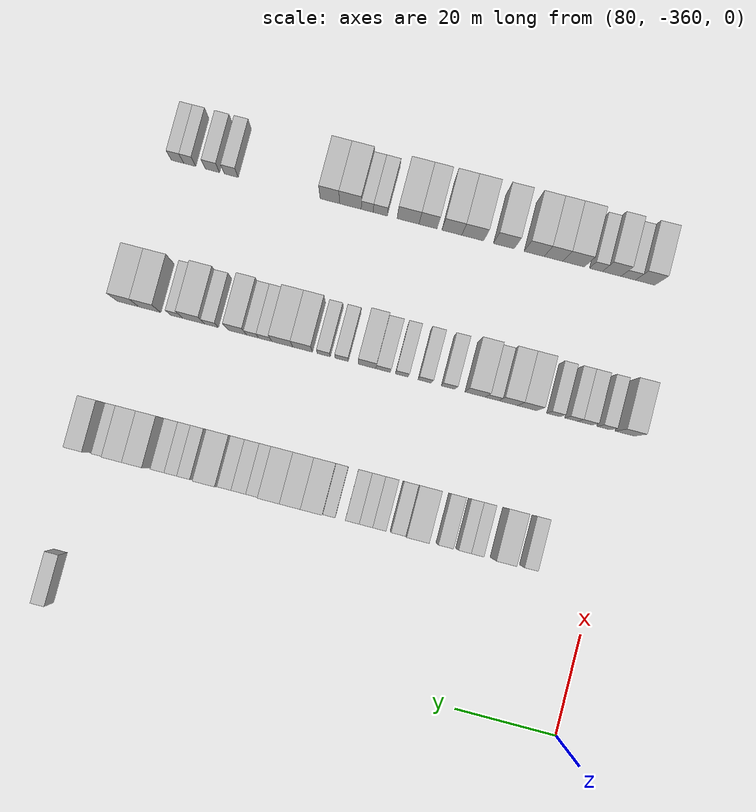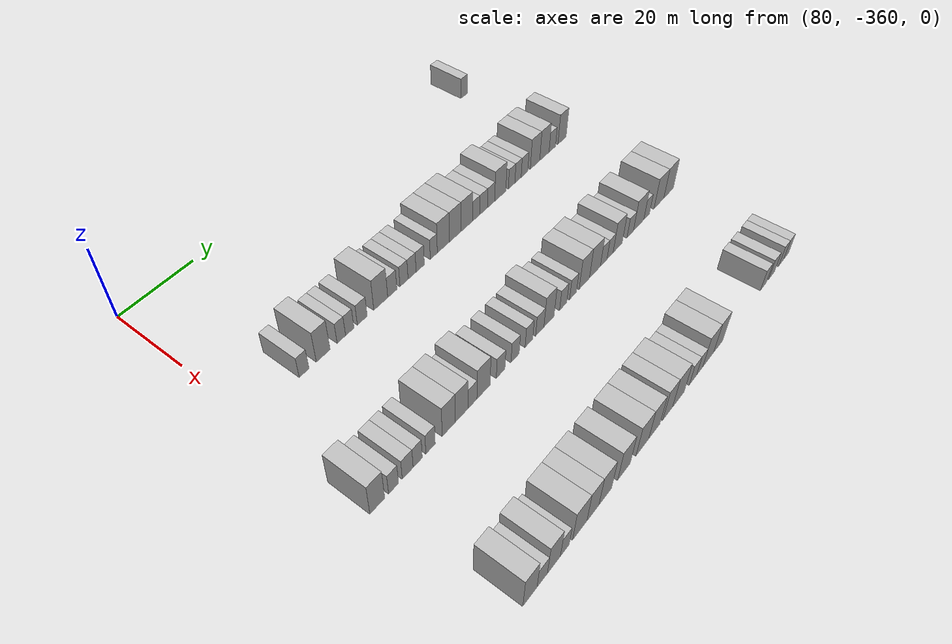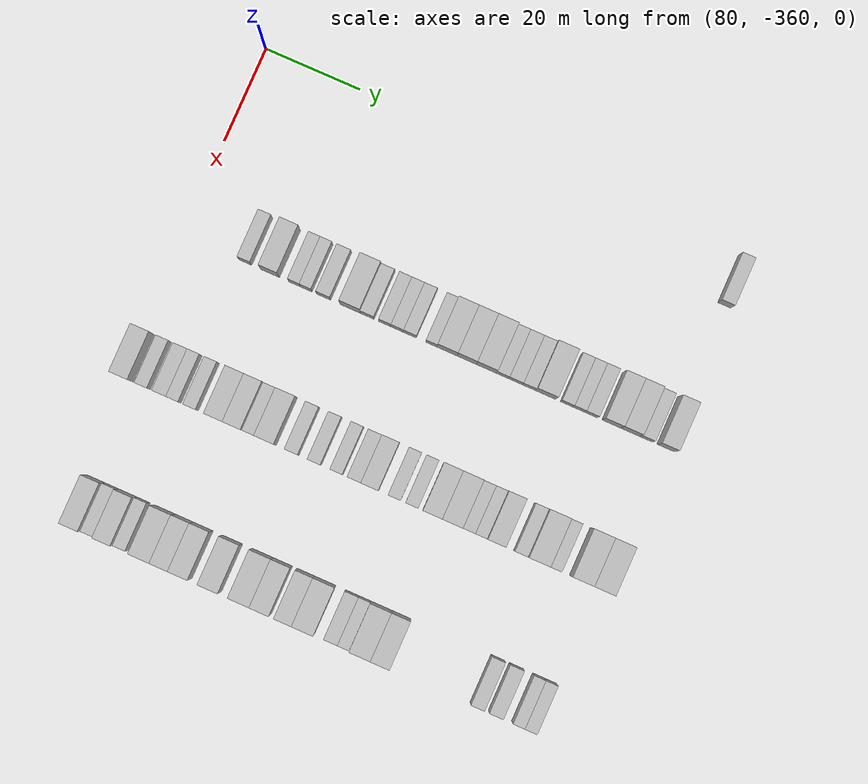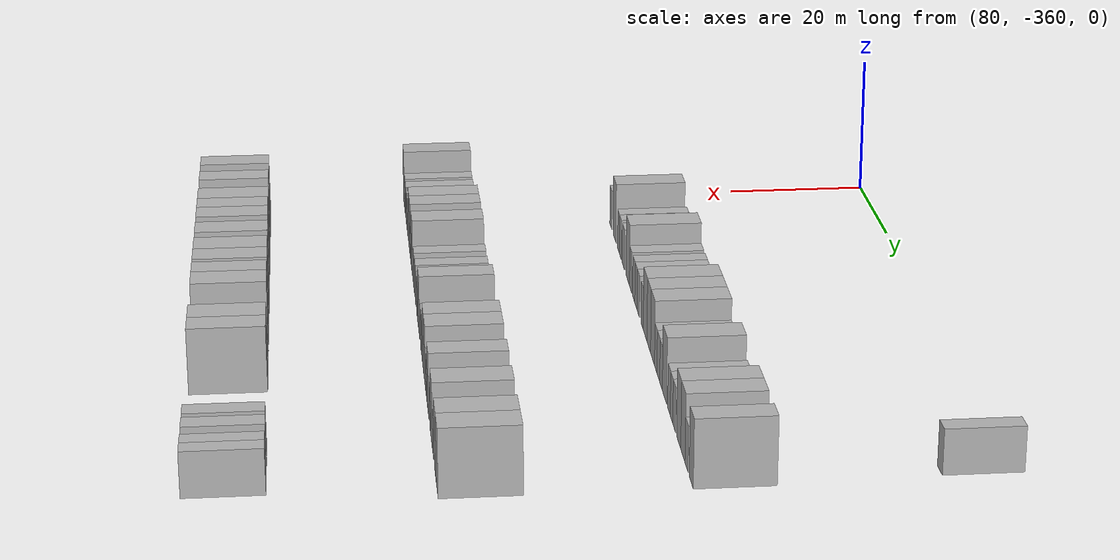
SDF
<sdf version="1.6">
 <world name="default">
  <model name="building_494">
   <static>1</static>
   <pose>85.0000 -258.1029 0 0.000000 0.000000 0.000000</pose>
   <link name="link">
    <pose>0 0 3.00 0 0 0</pose>
    <collision name="collision"><geometry><box><size>10.0000 2.7513 6.0000</size></box></geometry></collision>
    <visual name="visual">
     <cast_shadows>0</cast_shadows>
     <geometry><box><size>10.0000 2.7513 6.0000</size></box></geometry>
     <material>
      <script>
       <uri>model://HANNAS_wall/materials/scripts</uri>
       <uri>model://HANNAS_wall/materials/textures</uri>
       <name>vrc/HANNAS_wall</name>
      </script>
     </material>
    </visual>
   </link>
  </model>
  <model name="building_700">
   <static>1</static>
   <pose>115.0000 -346.4816 0 0.000000 0.000000 0.000000</pose>
   <link name="link">
    <pose>0 0 3.00 0 0 0</pose>
    <collision name="collision"><geometry><box><size>10.0000 2.6800 6.0000</size></box></geometry></collision>
    <visual name="visual">
     <cast_shadows>0</cast_shadows>
     <geometry><box><size>10.0000 2.6800 6.0000</size></box></geometry>
     <material>
      <script>
       <uri>model://HANNAS_wall/materials/scripts</uri>
       <uri>model://HANNAS_wall/materials/textures</uri>
       <name>vrc/HANNAS_wall</name>
      </script>
     </material>
    </visual>
   </link>
  </model>
  <model name="building_701">
   <static>1</static>
   <pose>115.0000 -341.1954 0 0.000000 0.000000 0.000000</pose>
   <link name="link">
    <pose>0 0 4.50 0 0 0</pose>
    <collision name="collision"><geometry><box><size>10.0000 3.8925 9.0000</size></box></geometry></collision>
    <visual name="visual">
     <cast_shadows>0</cast_shadows>
     <geometry><box><size>10.0000 3.8925 9.0000</size></box></geometry>
     <material>
      <script>
       <uri>model://HANNAS_wall/materials/scripts</uri>
       <uri>model://HANNAS_wall/materials/textures</uri>
       <name>vrc/HANNAS_wall</name>
      </script>
     </material>
    </visual>
   </link>
  </model>
  <model name="building_702">
   <static>1</static>
   <pose>115.0000 -336.0176 0 0.000000 0.000000 0.000000</pose>
   <link name="link">
    <pose>0 0 3.00 0 0 0</pose>
    <collision name="collision"><geometry><box><size>10.0000 2.4629 6.0000</size></box></geometry></collision>
    <visual name="visual">
     <cast_shadows>0</cast_shadows>
     <geometry><box><size>10.0000 2.4629 6.0000</size></box></geometry>
     <material>
      <script>
       <uri>model://HANNAS_wall/materials/scripts</uri>
       <uri>model://HANNAS_wall/materials/textures</uri>
       <name>vrc/HANNAS_wall</name>
      </script>
     </material>
    </visual>
   </link>
  </model>
  <model name="building_703">
   <static>1</static>
   <pose>115.0000 -333.5544 0 0.000000 0.000000 0.000000</pose>
   <link name="link">
    <pose>0 0 3.00 0 0 0</pose>
    <collision name="collision"><geometry><box><size>10.0000 2.4635 6.0000</size></box></geometry></collision>
    <visual name="visual">
     <cast_shadows>0</cast_shadows>
     <geometry><box><size>10.0000 2.4635 6.0000</size></box></geometry>
     <material>
      <script>
       <uri>model://HANNAS_wall/materials/scripts</uri>
       <uri>model://HANNAS_wall/materials/textures</uri>
       <name>vrc/HANNAS_wall</name>
      </script>
     </material>
    </visual>
   </link>
  </model>
  <model name="building_704">
   <static>1</static>
   <pose>115.0000 -329.8451 0 0.000000 0.000000 0.000000</pose>
   <link name="link">
    <pose>0 0 3.00 0 0 0</pose>
    <collision name="collision"><geometry><box><size>10.0000 2.9552 6.0000</size></box></geometry></collision>
    <visual name="visual">
     <cast_shadows>0</cast_shadows>
     <geometry><box><size>10.0000 2.9552 6.0000</size></box></geometry>
     <material>
      <script>
       <uri>model://HANNAS_wall/materials/scripts</uri>
       <uri>model://HANNAS_wall/materials/textures</uri>
       <name>vrc/HANNAS_wall</name>
      </script>
     </material>
    </visual>
   </link>
  </model>
  <model name="building_705">
   <static>1</static>
   <pose>115.0000 -324.1973 0 0.000000 0.000000 0.000000</pose>
   <link name="link">
    <pose>0 0 4.50 0 0 0</pose>
    <collision name="collision"><geometry><box><size>10.0000 4.3404 9.0000</size></box></geometry></collision>
    <visual name="visual">
     <cast_shadows>0</cast_shadows>
     <geometry><box><size>10.0000 4.3404 9.0000</size></box></geometry>
     <material>
      <script>
       <uri>model://HANNAS_wall/materials/scripts</uri>
       <uri>model://HANNAS_wall/materials/textures</uri>
       <name>vrc/HANNAS_wall</name>
      </script>
     </material>
    </visual>
   </link>
  </model>
  <model name="building_706">
   <static>1</static>
   <pose>115.0000 -320.5890 0 0.000000 0.000000 0.000000</pose>
   <link name="link">
    <pose>0 0 3.00 0 0 0</pose>
    <collision name="collision"><geometry><box><size>10.0000 2.8761 6.0000</size></box></geometry></collision>
    <visual name="visual">
     <cast_shadows>0</cast_shadows>
     <geometry><box><size>10.0000 2.8761 6.0000</size></box></geometry>
     <material>
      <script>
       <uri>model://HANNAS_wall/materials/scripts</uri>
       <uri>model://HANNAS_wall/materials/textures</uri>
       <name>vrc/HANNAS_wall</name>
      </script>
     </material>
    </visual>
   </link>
  </model>
  <model name="building_707">
   <static>1</static>
   <pose>115.0000 -316.8461 0 0.000000 0.000000 0.000000</pose>
   <link name="link">
    <pose>0 0 3.00 0 0 0</pose>
    <collision name="collision"><geometry><box><size>10.0000 2.6098 6.0000</size></box></geometry></collision>
    <visual name="visual">
     <cast_shadows>0</cast_shadows>
     <geometry><box><size>10.0000 2.6098 6.0000</size></box></geometry>
     <material>
      <script>
       <uri>model://HANNAS_wall/materials/scripts</uri>
       <uri>model://HANNAS_wall/materials/textures</uri>
       <name>vrc/HANNAS_wall</name>
      </script>
     </material>
    </visual>
   </link>
  </model>
  <model name="building_708">
   <static>1</static>
   <pose>115.0000 -314.2224 0 0.000000 0.000000 0.000000</pose>
   <link name="link">
    <pose>0 0 3.00 0 0 0</pose>
    <collision name="collision"><geometry><box><size>10.0000 2.6375 6.0000</size></box></geometry></collision>
    <visual name="visual">
     <cast_shadows>0</cast_shadows>
     <geometry><box><size>10.0000 2.6375 6.0000</size></box></geometry>
     <material>
      <script>
       <uri>model://HANNAS_wall/materials/scripts</uri>
       <uri>model://HANNAS_wall/materials/textures</uri>
       <name>vrc/HANNAS_wall</name>
      </script>
     </material>
    </visual>
   </link>
  </model>
  <model name="building_709">
   <static>1</static>
   <pose>115.0000 -311.5417 0 0.000000 0.000000 0.000000</pose>
   <link name="link">
    <pose>0 0 3.00 0 0 0</pose>
    <collision name="collision"><geometry><box><size>10.0000 2.7240 6.0000</size></box></geometry></collision>
    <visual name="visual">
     <cast_shadows>0</cast_shadows>
     <geometry><box><size>10.0000 2.7240 6.0000</size></box></geometry>
     <material>
      <script>
       <uri>model://HANNAS_wall/materials/scripts</uri>
       <uri>model://HANNAS_wall/materials/textures</uri>
       <name>vrc/HANNAS_wall</name>
      </script>
     </material>
    </visual>
   </link>
  </model>
  <model name="building_710">
   <static>1</static>
   <pose>115.0000 -306.9786 0 0.000000 0.000000 0.000000</pose>
   <link name="link">
    <pose>0 0 3.00 0 0 0</pose>
    <collision name="collision"><geometry><box><size>10.0000 2.4021 6.0000</size></box></geometry></collision>
    <visual name="visual">
     <cast_shadows>0</cast_shadows>
     <geometry><box><size>10.0000 2.4021 6.0000</size></box></geometry>
     <material>
      <script>
       <uri>model://HANNAS_wall/materials/scripts</uri>
       <uri>model://HANNAS_wall/materials/textures</uri>
       <name>vrc/HANNAS_wall</name>
      </script>
     </material>
    </visual>
   </link>
  </model>
  <model name="building_711">
   <static>1</static>
   <pose>115.0000 -303.6596 0 0.000000 0.000000 0.000000</pose>
   <link name="link">
    <pose>0 0 4.50 0 0 0</pose>
    <collision name="collision"><geometry><box><size>10.0000 4.2360 9.0000</size></box></geometry></collision>
    <visual name="visual">
     <cast_shadows>0</cast_shadows>
     <geometry><box><size>10.0000 4.2360 9.0000</size></box></geometry>
     <material>
      <script>
       <uri>model://HANNAS_wall/materials/scripts</uri>
       <uri>model://HANNAS_wall/materials/textures</uri>
       <name>vrc/HANNAS_wall</name>
      </script>
     </material>
    </visual>
   </link>
  </model>
  <model name="building_712">
   <static>1</static>
   <pose>115.0000 -299.5201 0 0.000000 0.000000 0.000000</pose>
   <link name="link">
    <pose>0 0 4.50 0 0 0</pose>
    <collision name="collision"><geometry><box><size>10.0000 4.0430 9.0000</size></box></geometry></collision>
    <visual name="visual">
     <cast_shadows>0</cast_shadows>
     <geometry><box><size>10.0000 4.0430 9.0000</size></box></geometry>
     <material>
      <script>
       <uri>model://HANNAS_wall/materials/scripts</uri>
       <uri>model://HANNAS_wall/materials/textures</uri>
       <name>vrc/HANNAS_wall</name>
      </script>
     </material>
    </visual>
   </link>
  </model>
  <model name="building_713">
   <static>1</static>
   <pose>115.0000 -295.3763 0 0.000000 0.000000 0.000000</pose>
   <link name="link">
    <pose>0 0 4.50 0 0 0</pose>
    <collision name="collision"><geometry><box><size>10.0000 4.2446 9.0000</size></box></geometry></collision>
    <visual name="visual">
     <cast_shadows>0</cast_shadows>
     <geometry><box><size>10.0000 4.2446 9.0000</size></box></geometry>
     <material>
      <script>
       <uri>model://HANNAS_wall/materials/scripts</uri>
       <uri>model://HANNAS_wall/materials/textures</uri>
       <name>vrc/HANNAS_wall</name>
      </script>
     </material>
    </visual>
   </link>
  </model>
  <model name="building_714">
   <static>1</static>
   <pose>115.0000 -291.9671 0 0.000000 0.000000 0.000000</pose>
   <link name="link">
    <pose>0 0 3.00 0 0 0</pose>
    <collision name="collision"><geometry><box><size>10.0000 2.5739 6.0000</size></box></geometry></collision>
    <visual name="visual">
     <cast_shadows>0</cast_shadows>
     <geometry><box><size>10.0000 2.5739 6.0000</size></box></geometry>
     <material>
      <script>
       <uri>model://HANNAS_wall/materials/scripts</uri>
       <uri>model://HANNAS_wall/materials/textures</uri>
       <name>vrc/HANNAS_wall</name>
      </script>
     </material>
    </visual>
   </link>
  </model>
  <model name="building_715">
   <static>1</static>
   <pose>115.0000 -289.2328 0 0.000000 0.000000 0.000000</pose>
   <link name="link">
    <pose>0 0 3.00 0 0 0</pose>
    <collision name="collision"><geometry><box><size>10.0000 2.8945 6.0000</size></box></geometry></collision>
    <visual name="visual">
     <cast_shadows>0</cast_shadows>
     <geometry><box><size>10.0000 2.8945 6.0000</size></box></geometry>
     <material>
      <script>
       <uri>model://HANNAS_wall/materials/scripts</uri>
       <uri>model://HANNAS_wall/materials/textures</uri>
       <name>vrc/HANNAS_wall</name>
      </script>
     </material>
    </visual>
   </link>
  </model>
  <model name="building_716">
   <static>1</static>
   <pose>115.0000 -286.4056 0 0.000000 0.000000 0.000000</pose>
   <link name="link">
    <pose>0 0 3.00 0 0 0</pose>
    <collision name="collision"><geometry><box><size>10.0000 2.7599 6.0000</size></box></geometry></collision>
    <visual name="visual">
     <cast_shadows>0</cast_shadows>
     <geometry><box><size>10.0000 2.7599 6.0000</size></box></geometry>
     <material>
      <script>
       <uri>model://HANNAS_wall/materials/scripts</uri>
       <uri>model://HANNAS_wall/materials/textures</uri>
       <name>vrc/HANNAS_wall</name>
      </script>
     </material>
    </visual>
   </link>
  </model>
  <model name="building_717">
   <static>1</static>
   <pose>115.0000 -282.8698 0 0.000000 0.000000 0.000000</pose>
   <link name="link">
    <pose>0 0 4.50 0 0 0</pose>
    <collision name="collision"><geometry><box><size>10.0000 4.3117 9.0000</size></box></geometry></collision>
    <visual name="visual">
     <cast_shadows>0</cast_shadows>
     <geometry><box><size>10.0000 4.3117 9.0000</size></box></geometry>
     <material>
      <script>
       <uri>model://HANNAS_wall/materials/scripts</uri>
       <uri>model://HANNAS_wall/materials/textures</uri>
       <name>vrc/HANNAS_wall</name>
      </script>
     </material>
    </visual>
   </link>
  </model>
  <model name="building_718">
   <static>1</static>
   <pose>115.0000 -278.4261 0 0.000000 0.000000 0.000000</pose>
   <link name="link">
    <pose>0 0 3.00 0 0 0</pose>
    <collision name="collision"><geometry><box><size>10.0000 2.5756 6.0000</size></box></geometry></collision>
    <visual name="visual">
     <cast_shadows>0</cast_shadows>
     <geometry><box><size>10.0000 2.5756 6.0000</size></box></geometry>
     <material>
      <script>
       <uri>model://HANNAS_wall/materials/scripts</uri>
       <uri>model://HANNAS_wall/materials/textures</uri>
       <name>vrc/HANNAS_wall</name>
      </script>
     </material>
    </visual>
   </link>
  </model>
  <model name="building_719">
   <static>1</static>
   <pose>115.0000 -275.8918 0 0.000000 0.000000 0.000000</pose>
   <link name="link">
    <pose>0 0 3.00 0 0 0</pose>
    <collision name="collision"><geometry><box><size>10.0000 2.4929 6.0000</size></box></geometry></collision>
    <visual name="visual">
     <cast_shadows>0</cast_shadows>
     <geometry><box><size>10.0000 2.4929 6.0000</size></box></geometry>
     <material>
      <script>
       <uri>model://HANNAS_wall/materials/scripts</uri>
       <uri>model://HANNAS_wall/materials/textures</uri>
       <name>vrc/HANNAS_wall</name>
      </script>
     </material>
    </visual>
   </link>
  </model>
  <model name="building_720">
   <static>1</static>
   <pose>115.0000 -273.2881 0 0.000000 0.000000 0.000000</pose>
   <link name="link">
    <pose>0 0 3.00 0 0 0</pose>
    <collision name="collision"><geometry><box><size>10.0000 2.7146 6.0000</size></box></geometry></collision>
    <visual name="visual">
     <cast_shadows>0</cast_shadows>
     <geometry><box><size>10.0000 2.7146 6.0000</size></box></geometry>
     <material>
      <script>
       <uri>model://HANNAS_wall/materials/scripts</uri>
       <uri>model://HANNAS_wall/materials/textures</uri>
       <name>vrc/HANNAS_wall</name>
      </script>
     </material>
    </visual>
   </link>
  </model>
  <model name="building_721">
   <static>1</static>
   <pose>115.0000 -268.9814 0 0.000000 0.000000 0.000000</pose>
   <link name="link">
    <pose>0 0 4.50 0 0 0</pose>
    <collision name="collision"><geometry><box><size>10.0000 3.8988 9.0000</size></box></geometry></collision>
    <visual name="visual">
     <cast_shadows>0</cast_shadows>
     <geometry><box><size>10.0000 3.8988 9.0000</size></box></geometry>
     <material>
      <script>
       <uri>model://HANNAS_wall/materials/scripts</uri>
       <uri>model://HANNAS_wall/materials/textures</uri>
       <name>vrc/HANNAS_wall</name>
      </script>
     </material>
    </visual>
   </link>
  </model>
  <model name="building_722">
   <static>1</static>
   <pose>115.0000 -265.0662 0 0.000000 0.000000 0.000000</pose>
   <link name="link">
    <pose>0 0 4.50 0 0 0</pose>
    <collision name="collision"><geometry><box><size>10.0000 3.9314 9.0000</size></box></geometry></collision>
    <visual name="visual">
     <cast_shadows>0</cast_shadows>
     <geometry><box><size>10.0000 3.9314 9.0000</size></box></geometry>
     <material>
      <script>
       <uri>model://HANNAS_wall/materials/scripts</uri>
       <uri>model://HANNAS_wall/materials/textures</uri>
       <name>vrc/HANNAS_wall</name>
      </script>
     </material>
    </visual>
   </link>
  </model>
  <model name="building_723">
   <static>1</static>
   <pose>115.0000 -261.7064 0 0.000000 0.000000 0.000000</pose>
   <link name="link">
    <pose>0 0 3.00 0 0 0</pose>
    <collision name="collision"><geometry><box><size>10.0000 2.7883 6.0000</size></box></geometry></collision>
    <visual name="visual">
     <cast_shadows>0</cast_shadows>
     <geometry><box><size>10.0000 2.7883 6.0000</size></box></geometry>
     <material>
      <script>
       <uri>model://HANNAS_wall/materials/scripts</uri>
       <uri>model://HANNAS_wall/materials/textures</uri>
       <name>vrc/HANNAS_wall</name>
      </script>
     </material>
    </visual>
   </link>
  </model>
  <model name="building_724">
   <static>1</static>
   <pose>115.0000 -257.5041 0 0.000000 0.000000 0.000000</pose>
   <link name="link">
    <pose>0 0 4.50 0 0 0</pose>
    <collision name="collision"><geometry><box><size>10.0000 3.6162 9.0000</size></box></geometry></collision>
    <visual name="visual">
     <cast_shadows>0</cast_shadows>
     <geometry><box><size>10.0000 3.6162 9.0000</size></box></geometry>
     <material>
      <script>
       <uri>model://HANNAS_wall/materials/scripts</uri>
       <uri>model://HANNAS_wall/materials/textures</uri>
       <name>vrc/HANNAS_wall</name>
      </script>
     </material>
    </visual>
   </link>
  </model>
  <model name="building_932">
   <static>1</static>
   <pose>145.0000 -358.8110 0 0.000000 0.000000 0.000000</pose>
   <link name="link">
    <pose>0 0 4.50 0 0 0</pose>
    <collision name="collision"><geometry><box><size>10.0000 3.8638 9.0000</size></box></geometry></collision>
    <visual name="visual">
     <cast_shadows>0</cast_shadows>
     <geometry><box><size>10.0000 3.8638 9.0000</size></box></geometry>
     <material>
      <script>
       <uri>model://HANNAS_wall/materials/scripts</uri>
       <uri>model://HANNAS_wall/materials/textures</uri>
       <name>vrc/HANNAS_wall</name>
      </script>
     </material>
    </visual>
   </link>
  </model>
  <model name="building_933">
   <static>1</static>
   <pose>145.0000 -354.5522 0 0.000000 0.000000 0.000000</pose>
   <link name="link">
    <pose>0 0 3.00 0 0 0</pose>
    <collision name="collision"><geometry><box><size>10.0000 2.6538 6.0000</size></box></geometry></collision>
    <visual name="visual">
     <cast_shadows>0</cast_shadows>
     <geometry><box><size>10.0000 2.6538 6.0000</size></box></geometry>
     <material>
      <script>
       <uri>model://HANNAS_wall/materials/scripts</uri>
       <uri>model://HANNAS_wall/materials/textures</uri>
       <name>vrc/HANNAS_wall</name>
      </script>
     </material>
    </visual>
   </link>
  </model>
  <model name="building_934">
   <static>1</static>
   <pose>145.0000 -350.7431 0 0.000000 0.000000 0.000000</pose>
   <link name="link">
    <pose>0 0 3.00 0 0 0</pose>
    <collision name="collision"><geometry><box><size>10.0000 2.9644 6.0000</size></box></geometry></collision>
    <visual name="visual">
     <cast_shadows>0</cast_shadows>
     <geometry><box><size>10.0000 2.9644 6.0000</size></box></geometry>
     <material>
      <script>
       <uri>model://HANNAS_wall/materials/scripts</uri>
       <uri>model://HANNAS_wall/materials/textures</uri>
       <name>vrc/HANNAS_wall</name>
      </script>
     </material>
    </visual>
   </link>
  </model>
  <model name="building_935">
   <static>1</static>
   <pose>145.0000 -347.9924 0 0.000000 0.000000 0.000000</pose>
   <link name="link">
    <pose>0 0 3.00 0 0 0</pose>
    <collision name="collision"><geometry><box><size>10.0000 2.5370 6.0000</size></box></geometry></collision>
    <visual name="visual">
     <cast_shadows>0</cast_shadows>
     <geometry><box><size>10.0000 2.5370 6.0000</size></box></geometry>
     <material>
      <script>
       <uri>model://HANNAS_wall/materials/scripts</uri>
       <uri>model://HANNAS_wall/materials/textures</uri>
       <name>vrc/HANNAS_wall</name>
      </script>
     </material>
    </visual>
   </link>
  </model>
  <model name="building_936">
   <static>1</static>
   <pose>145.0000 -344.3924 0 0.000000 0.000000 0.000000</pose>
   <link name="link">
    <pose>0 0 3.00 0 0 0</pose>
    <collision name="collision"><geometry><box><size>10.0000 2.6630 6.0000</size></box></geometry></collision>
    <visual name="visual">
     <cast_shadows>0</cast_shadows>
     <geometry><box><size>10.0000 2.6630 6.0000</size></box></geometry>
     <material>
      <script>
       <uri>model://HANNAS_wall/materials/scripts</uri>
       <uri>model://HANNAS_wall/materials/textures</uri>
       <name>vrc/HANNAS_wall</name>
      </script>
     </material>
    </visual>
   </link>
  </model>
  <model name="building_937">
   <static>1</static>
   <pose>145.0000 -339.1140 0 0.000000 0.000000 0.000000</pose>
   <link name="link">
    <pose>0 0 4.50 0 0 0</pose>
    <collision name="collision"><geometry><box><size>10.0000 3.8939 9.0000</size></box></geometry></collision>
    <visual name="visual">
     <cast_shadows>0</cast_shadows>
     <geometry><box><size>10.0000 3.8939 9.0000</size></box></geometry>
     <material>
      <script>
       <uri>model://HANNAS_wall/materials/scripts</uri>
       <uri>model://HANNAS_wall/materials/textures</uri>
       <name>vrc/HANNAS_wall</name>
      </script>
     </material>
    </visual>
   </link>
  </model>
  <model name="building_938">
   <static>1</static>
   <pose>145.0000 -335.2858 0 0.000000 0.000000 0.000000</pose>
   <link name="link">
    <pose>0 0 4.50 0 0 0</pose>
    <collision name="collision"><geometry><box><size>10.0000 3.7624 9.0000</size></box></geometry></collision>
    <visual name="visual">
     <cast_shadows>0</cast_shadows>
     <geometry><box><size>10.0000 3.7624 9.0000</size></box></geometry>
     <material>
      <script>
       <uri>model://HANNAS_wall/materials/scripts</uri>
       <uri>model://HANNAS_wall/materials/textures</uri>
       <name>vrc/HANNAS_wall</name>
      </script>
     </material>
    </visual>
   </link>
  </model>
  <model name="building_939">
   <static>1</static>
   <pose>145.0000 -332.0211 0 0.000000 0.000000 0.000000</pose>
   <link name="link">
    <pose>0 0 3.00 0 0 0</pose>
    <collision name="collision"><geometry><box><size>10.0000 2.7671 6.0000</size></box></geometry></collision>
    <visual name="visual">
     <cast_shadows>0</cast_shadows>
     <geometry><box><size>10.0000 2.7671 6.0000</size></box></geometry>
     <material>
      <script>
       <uri>model://HANNAS_wall/materials/scripts</uri>
       <uri>model://HANNAS_wall/materials/textures</uri>
       <name>vrc/HANNAS_wall</name>
      </script>
     </material>
    </visual>
   </link>
  </model>
  <model name="building_940">
   <static>1</static>
   <pose>145.0000 -328.5827 0 0.000000 0.000000 0.000000</pose>
   <link name="link">
    <pose>0 0 4.50 0 0 0</pose>
    <collision name="collision"><geometry><box><size>10.0000 4.1097 9.0000</size></box></geometry></collision>
    <visual name="visual">
     <cast_shadows>0</cast_shadows>
     <geometry><box><size>10.0000 4.1097 9.0000</size></box></geometry>
     <material>
      <script>
       <uri>model://HANNAS_wall/materials/scripts</uri>
       <uri>model://HANNAS_wall/materials/textures</uri>
       <name>vrc/HANNAS_wall</name>
      </script>
     </material>
    </visual>
   </link>
  </model>
  <model name="building_941">
   <static>1</static>
   <pose>145.0000 -323.1290 0 0.000000 0.000000 0.000000</pose>
   <link name="link">
    <pose>0 0 3.00 0 0 0</pose>
    <collision name="collision"><geometry><box><size>10.0000 2.7976 6.0000</size></box></geometry></collision>
    <visual name="visual">
     <cast_shadows>0</cast_shadows>
     <geometry><box><size>10.0000 2.7976 6.0000</size></box></geometry>
     <material>
      <script>
       <uri>model://HANNAS_wall/materials/scripts</uri>
       <uri>model://HANNAS_wall/materials/textures</uri>
       <name>vrc/HANNAS_wall</name>
      </script>
     </material>
    </visual>
   </link>
  </model>
  <model name="building_942">
   <static>1</static>
   <pose>145.0000 -318.3647 0 0.000000 0.000000 0.000000</pose>
   <link name="link">
    <pose>0 0 3.00 0 0 0</pose>
    <collision name="collision"><geometry><box><size>10.0000 2.7310 6.0000</size></box></geometry></collision>
    <visual name="visual">
     <cast_shadows>0</cast_shadows>
     <geometry><box><size>10.0000 2.7310 6.0000</size></box></geometry>
     <material>
      <script>
       <uri>model://HANNAS_wall/materials/scripts</uri>
       <uri>model://HANNAS_wall/materials/textures</uri>
       <name>vrc/HANNAS_wall</name>
      </script>
     </material>
    </visual>
   </link>
  </model>
  <model name="building_943">
   <static>1</static>
   <pose>145.0000 -313.6997 0 0.000000 0.000000 0.000000</pose>
   <link name="link">
    <pose>0 0 3.00 0 0 0</pose>
    <collision name="collision"><geometry><box><size>10.0000 2.5989 6.0000</size></box></geometry></collision>
    <visual name="visual">
     <cast_shadows>0</cast_shadows>
     <geometry><box><size>10.0000 2.5989 6.0000</size></box></geometry>
     <material>
      <script>
       <uri>model://HANNAS_wall/materials/scripts</uri>
       <uri>model://HANNAS_wall/materials/textures</uri>
       <name>vrc/HANNAS_wall</name>
      </script>
     </material>
    </visual>
   </link>
  </model>
  <model name="building_944">
   <static>1</static>
   <pose>145.0000 -309.9384 0 0.000000 0.000000 0.000000</pose>
   <link name="link">
    <pose>0 0 3.00 0 0 0</pose>
    <collision name="collision"><geometry><box><size>10.0000 2.9238 6.0000</size></box></geometry></collision>
    <visual name="visual">
     <cast_shadows>0</cast_shadows>
     <geometry><box><size>10.0000 2.9238 6.0000</size></box></geometry>
     <material>
      <script>
       <uri>model://HANNAS_wall/materials/scripts</uri>
       <uri>model://HANNAS_wall/materials/textures</uri>
       <name>vrc/HANNAS_wall</name>
      </script>
     </material>
    </visual>
   </link>
  </model>
  <model name="building_945">
   <static>1</static>
   <pose>145.0000 -306.6694 0 0.000000 0.000000 0.000000</pose>
   <link name="link">
    <pose>0 0 4.50 0 0 0</pose>
    <collision name="collision"><geometry><box><size>10.0000 3.6142 9.0000</size></box></geometry></collision>
    <visual name="visual">
     <cast_shadows>0</cast_shadows>
     <geometry><box><size>10.0000 3.6142 9.0000</size></box></geometry>
     <material>
      <script>
       <uri>model://HANNAS_wall/materials/scripts</uri>
       <uri>model://HANNAS_wall/materials/textures</uri>
       <name>vrc/HANNAS_wall</name>
      </script>
     </material>
    </visual>
   </link>
  </model>
  <model name="building_946">
   <static>1</static>
   <pose>145.0000 -301.5353 0 0.000000 0.000000 0.000000</pose>
   <link name="link">
    <pose>0 0 3.00 0 0 0</pose>
    <collision name="collision"><geometry><box><size>10.0000 2.6540 6.0000</size></box></geometry></collision>
    <visual name="visual">
     <cast_shadows>0</cast_shadows>
     <geometry><box><size>10.0000 2.6540 6.0000</size></box></geometry>
     <material>
      <script>
       <uri>model://HANNAS_wall/materials/scripts</uri>
       <uri>model://HANNAS_wall/materials/textures</uri>
       <name>vrc/HANNAS_wall</name>
      </script>
     </material>
    </visual>
   </link>
  </model>
  <model name="building_947">
   <static>1</static>
   <pose>145.0000 -297.8991 0 0.000000 0.000000 0.000000</pose>
   <link name="link">
    <pose>0 0 3.00 0 0 0</pose>
    <collision name="collision"><geometry><box><size>10.0000 2.6184 6.0000</size></box></geometry></collision>
    <visual name="visual">
     <cast_shadows>0</cast_shadows>
     <geometry><box><size>10.0000 2.6184 6.0000</size></box></geometry>
     <material>
      <script>
       <uri>model://HANNAS_wall/materials/scripts</uri>
       <uri>model://HANNAS_wall/materials/textures</uri>
       <name>vrc/HANNAS_wall</name>
      </script>
     </material>
    </visual>
   </link>
  </model>
  <model name="building_948">
   <static>1</static>
   <pose>145.0000 -293.5966 0 0.000000 0.000000 0.000000</pose>
   <link name="link">
    <pose>0 0 4.50 0 0 0</pose>
    <collision name="collision"><geometry><box><size>10.0000 3.9867 9.0000</size></box></geometry></collision>
    <visual name="visual">
     <cast_shadows>0</cast_shadows>
     <geometry><box><size>10.0000 3.9867 9.0000</size></box></geometry>
     <material>
      <script>
       <uri>model://HANNAS_wall/materials/scripts</uri>
       <uri>model://HANNAS_wall/materials/textures</uri>
       <name>vrc/HANNAS_wall</name>
      </script>
     </material>
    </visual>
   </link>
  </model>
  <model name="building_949">
   <static>1</static>
   <pose>145.0000 -289.4645 0 0.000000 0.000000 0.000000</pose>
   <link name="link">
    <pose>0 0 4.50 0 0 0</pose>
    <collision name="collision"><geometry><box><size>10.0000 4.2774 9.0000</size></box></geometry></collision>
    <visual name="visual">
     <cast_shadows>0</cast_shadows>
     <geometry><box><size>10.0000 4.2774 9.0000</size></box></geometry>
     <material>
      <script>
       <uri>model://HANNAS_wall/materials/scripts</uri>
       <uri>model://HANNAS_wall/materials/textures</uri>
       <name>vrc/HANNAS_wall</name>
      </script>
     </material>
    </visual>
   </link>
  </model>
  <model name="building_950">
   <static>1</static>
   <pose>145.0000 -285.9932 0 0.000000 0.000000 0.000000</pose>
   <link name="link">
    <pose>0 0 3.00 0 0 0</pose>
    <collision name="collision"><geometry><box><size>10.0000 2.6654 6.0000</size></box></geometry></collision>
    <visual name="visual">
     <cast_shadows>0</cast_shadows>
     <geometry><box><size>10.0000 2.6654 6.0000</size></box></geometry>
     <material>
      <script>
       <uri>model://HANNAS_wall/materials/scripts</uri>
       <uri>model://HANNAS_wall/materials/textures</uri>
       <name>vrc/HANNAS_wall</name>
      </script>
     </material>
    </visual>
   </link>
  </model>
  <model name="building_951">
   <static>1</static>
   <pose>145.0000 -283.4223 0 0.000000 0.000000 0.000000</pose>
   <link name="link">
    <pose>0 0 3.00 0 0 0</pose>
    <collision name="collision"><geometry><box><size>10.0000 2.4764 6.0000</size></box></geometry></collision>
    <visual name="visual">
     <cast_shadows>0</cast_shadows>
     <geometry><box><size>10.0000 2.4764 6.0000</size></box></geometry>
     <material>
      <script>
       <uri>model://HANNAS_wall/materials/scripts</uri>
       <uri>model://HANNAS_wall/materials/textures</uri>
       <name>vrc/HANNAS_wall</name>
      </script>
     </material>
    </visual>
   </link>
  </model>
  <model name="building_952">
   <static>1</static>
   <pose>145.0000 -280.3063 0 0.000000 0.000000 0.000000</pose>
   <link name="link">
    <pose>0 0 4.50 0 0 0</pose>
    <collision name="collision"><geometry><box><size>10.0000 3.7556 9.0000</size></box></geometry></collision>
    <visual name="visual">
     <cast_shadows>0</cast_shadows>
     <geometry><box><size>10.0000 3.7556 9.0000</size></box></geometry>
     <material>
      <script>
       <uri>model://HANNAS_wall/materials/scripts</uri>
       <uri>model://HANNAS_wall/materials/textures</uri>
       <name>vrc/HANNAS_wall</name>
      </script>
     </material>
    </visual>
   </link>
  </model>
  <model name="building_953">
   <static>1</static>
   <pose>145.0000 -275.0554 0 0.000000 0.000000 0.000000</pose>
   <link name="link">
    <pose>0 0 3.00 0 0 0</pose>
    <collision name="collision"><geometry><box><size>10.0000 2.7462 6.0000</size></box></geometry></collision>
    <visual name="visual">
     <cast_shadows>0</cast_shadows>
     <geometry><box><size>10.0000 2.7462 6.0000</size></box></geometry>
     <material>
      <script>
       <uri>model://HANNAS_wall/materials/scripts</uri>
       <uri>model://HANNAS_wall/materials/textures</uri>
       <name>vrc/HANNAS_wall</name>
      </script>
     </material>
    </visual>
   </link>
  </model>
  <model name="building_954">
   <static>1</static>
   <pose>145.0000 -271.4544 0 0.000000 0.000000 0.000000</pose>
   <link name="link">
    <pose>0 0 4.50 0 0 0</pose>
    <collision name="collision"><geometry><box><size>10.0000 4.4558 9.0000</size></box></geometry></collision>
    <visual name="visual">
     <cast_shadows>0</cast_shadows>
     <geometry><box><size>10.0000 4.4558 9.0000</size></box></geometry>
     <material>
      <script>
       <uri>model://HANNAS_wall/materials/scripts</uri>
       <uri>model://HANNAS_wall/materials/textures</uri>
       <name>vrc/HANNAS_wall</name>
      </script>
     </material>
    </visual>
   </link>
  </model>
  <model name="building_955">
   <static>1</static>
   <pose>145.0000 -267.9508 0 0.000000 0.000000 0.000000</pose>
   <link name="link">
    <pose>0 0 3.00 0 0 0</pose>
    <collision name="collision"><geometry><box><size>10.0000 2.5515 6.0000</size></box></geometry></collision>
    <visual name="visual">
     <cast_shadows>0</cast_shadows>
     <geometry><box><size>10.0000 2.5515 6.0000</size></box></geometry>
     <material>
      <script>
       <uri>model://HANNAS_wall/materials/scripts</uri>
       <uri>model://HANNAS_wall/materials/textures</uri>
       <name>vrc/HANNAS_wall</name>
      </script>
     </material>
    </visual>
   </link>
  </model>
  <model name="building_956">
   <static>1</static>
   <pose>145.0000 -262.4513 0 0.000000 0.000000 0.000000</pose>
   <link name="link">
    <pose>0 0 4.50 0 0 0</pose>
    <collision name="collision"><geometry><box><size>10.0000 4.4473 9.0000</size></box></geometry></collision>
    <visual name="visual">
     <cast_shadows>0</cast_shadows>
     <geometry><box><size>10.0000 4.4473 9.0000</size></box></geometry>
     <material>
      <script>
       <uri>model://HANNAS_wall/materials/scripts</uri>
       <uri>model://HANNAS_wall/materials/textures</uri>
       <name>vrc/HANNAS_wall</name>
      </script>
     </material>
    </visual>
   </link>
  </model>
  <model name="building_957">
   <static>1</static>
   <pose>145.0000 -258.0234 0 0.000000 0.000000 0.000000</pose>
   <link name="link">
    <pose>0 0 4.50 0 0 0</pose>
    <collision name="collision"><geometry><box><size>10.0000 4.4085 9.0000</size></box></geometry></collision>
    <visual name="visual">
     <cast_shadows>0</cast_shadows>
     <geometry><box><size>10.0000 4.4085 9.0000</size></box></geometry>
     <material>
      <script>
       <uri>model://HANNAS_wall/materials/scripts</uri>
       <uri>model://HANNAS_wall/materials/textures</uri>
       <name>vrc/HANNAS_wall</name>
      </script>
     </material>
    </visual>
   </link>
  </model>
  <model name="building_1160">
   <static>1</static>
   <pose>175.0000 -355.6073 0 0.000000 0.000000 0.000000</pose>
   <link name="link">
    <pose>0 0 4.50 0 0 0</pose>
    <collision name="collision"><geometry><box><size>10.0000 3.9380 9.0000</size></box></geometry></collision>
    <visual name="visual">
     <cast_shadows>0</cast_shadows>
     <geometry><box><size>10.0000 3.9380 9.0000</size></box></geometry>
     <material>
      <script>
       <uri>model://HANNAS_wall/materials/scripts</uri>
       <uri>model://HANNAS_wall/materials/textures</uri>
       <name>vrc/HANNAS_wall</name>
      </script>
     </material>
    </visual>
   </link>
  </model>
  <model name="building_1161">
   <static>1</static>
   <pose>175.0000 -352.1679 0 0.000000 0.000000 0.000000</pose>
   <link name="link">
    <pose>0 0 3.00 0 0 0</pose>
    <collision name="collision"><geometry><box><size>10.0000 2.9409 6.0000</size></box></geometry></collision>
    <visual name="visual">
     <cast_shadows>0</cast_shadows>
     <geometry><box><size>10.0000 2.9409 6.0000</size></box></geometry>
     <material>
      <script>
       <uri>model://HANNAS_wall/materials/scripts</uri>
       <uri>model://HANNAS_wall/materials/textures</uri>
       <name>vrc/HANNAS_wall</name>
      </script>
     </material>
    </visual>
   </link>
  </model>
  <model name="building_1162">
   <static>1</static>
   <pose>175.0000 -348.7999 0 0.000000 0.000000 0.000000</pose>
   <link name="link">
    <pose>0 0 4.50 0 0 0</pose>
    <collision name="collision"><geometry><box><size>10.0000 3.7951 9.0000</size></box></geometry></collision>
    <visual name="visual">
     <cast_shadows>0</cast_shadows>
     <geometry><box><size>10.0000 3.7951 9.0000</size></box></geometry>
     <material>
      <script>
       <uri>model://HANNAS_wall/materials/scripts</uri>
       <uri>model://HANNAS_wall/materials/textures</uri>
       <name>vrc/HANNAS_wall</name>
      </script>
     </material>
    </visual>
   </link>
  </model>
  <model name="building_1163">
   <static>1</static>
   <pose>175.0000 -345.5865 0 0.000000 0.000000 0.000000</pose>
   <link name="link">
    <pose>0 0 3.00 0 0 0</pose>
    <collision name="collision"><geometry><box><size>10.0000 2.6318 6.0000</size></box></geometry></collision>
    <visual name="visual">
     <cast_shadows>0</cast_shadows>
     <geometry><box><size>10.0000 2.6318 6.0000</size></box></geometry>
     <material>
      <script>
       <uri>model://HANNAS_wall/materials/scripts</uri>
       <uri>model://HANNAS_wall/materials/textures</uri>
       <name>vrc/HANNAS_wall</name>
      </script>
     </material>
    </visual>
   </link>
  </model>
  <model name="building_1164">
   <static>1</static>
   <pose>175.0000 -341.0574 0 0.000000 0.000000 0.000000</pose>
   <link name="link">
    <pose>0 0 4.50 0 0 0</pose>
    <collision name="collision"><geometry><box><size>10.0000 4.4264 9.0000</size></box></geometry></collision>
    <visual name="visual">
     <cast_shadows>0</cast_shadows>
     <geometry><box><size>10.0000 4.4264 9.0000</size></box></geometry>
     <material>
      <script>
       <uri>model://HANNAS_wall/materials/scripts</uri>
       <uri>model://HANNAS_wall/materials/textures</uri>
       <name>vrc/HANNAS_wall</name>
      </script>
     </material>
    </visual>
   </link>
  </model>
  <model name="building_1165">
   <static>1</static>
   <pose>175.0000 -336.9438 0 0.000000 0.000000 0.000000</pose>
   <link name="link">
    <pose>0 0 4.50 0 0 0</pose>
    <collision name="collision"><geometry><box><size>10.0000 3.8007 9.0000</size></box></geometry></collision>
    <visual name="visual">
     <cast_shadows>0</cast_shadows>
     <geometry><box><size>10.0000 3.8007 9.0000</size></box></geometry>
     <material>
      <script>
       <uri>model://HANNAS_wall/materials/scripts</uri>
       <uri>model://HANNAS_wall/materials/textures</uri>
       <name>vrc/HANNAS_wall</name>
      </script>
     </material>
    </visual>
   </link>
  </model>
  <model name="building_1166">
   <static>1</static>
   <pose>175.0000 -332.9882 0 0.000000 0.000000 0.000000</pose>
   <link name="link">
    <pose>0 0 4.50 0 0 0</pose>
    <collision name="collision"><geometry><box><size>10.0000 4.1106 9.0000</size></box></geometry></collision>
    <visual name="visual">
     <cast_shadows>0</cast_shadows>
     <geometry><box><size>10.0000 4.1106 9.0000</size></box></geometry>
     <material>
      <script>
       <uri>model://HANNAS_wall/materials/scripts</uri>
       <uri>model://HANNAS_wall/materials/textures</uri>
       <name>vrc/HANNAS_wall</name>
      </script>
     </material>
    </visual>
   </link>
  </model>
  <model name="building_1167">
   <static>1</static>
   <pose>175.0000 -326.8078 0 0.000000 0.000000 0.000000</pose>
   <link name="link">
    <pose>0 0 4.50 0 0 0</pose>
    <collision name="collision"><geometry><box><size>10.0000 4.2503 9.0000</size></box></geometry></collision>
    <visual name="visual">
     <cast_shadows>0</cast_shadows>
     <geometry><box><size>10.0000 4.2503 9.0000</size></box></geometry>
     <material>
      <script>
       <uri>model://HANNAS_wall/materials/scripts</uri>
       <uri>model://HANNAS_wall/materials/textures</uri>
       <name>vrc/HANNAS_wall</name>
      </script>
     </material>
    </visual>
   </link>
  </model>
  <model name="building_1168">
   <static>1</static>
   <pose>175.0000 -320.4455 0 0.000000 0.000000 0.000000</pose>
   <link name="link">
    <pose>0 0 4.50 0 0 0</pose>
    <collision name="collision"><geometry><box><size>10.0000 4.4743 9.0000</size></box></geometry></collision>
    <visual name="visual">
     <cast_shadows>0</cast_shadows>
     <geometry><box><size>10.0000 4.4743 9.0000</size></box></geometry>
     <material>
      <script>
       <uri>model://HANNAS_wall/materials/scripts</uri>
       <uri>model://HANNAS_wall/materials/textures</uri>
       <name>vrc/HANNAS_wall</name>
      </script>
     </material>
    </visual>
   </link>
  </model>
  <model name="building_1169">
   <static>1</static>
   <pose>175.0000 -316.1778 0 0.000000 0.000000 0.000000</pose>
   <link name="link">
    <pose>0 0 4.50 0 0 0</pose>
    <collision name="collision"><geometry><box><size>10.0000 4.0611 9.0000</size></box></geometry></collision>
    <visual name="visual">
     <cast_shadows>0</cast_shadows>
     <geometry><box><size>10.0000 4.0611 9.0000</size></box></geometry>
     <material>
      <script>
       <uri>model://HANNAS_wall/materials/scripts</uri>
       <uri>model://HANNAS_wall/materials/textures</uri>
       <name>vrc/HANNAS_wall</name>
      </script>
     </material>
    </visual>
   </link>
  </model>
  <model name="building_1170">
   <static>1</static>
   <pose>175.0000 -311.3108 0 0.000000 0.000000 0.000000</pose>
   <link name="link">
    <pose>0 0 4.50 0 0 0</pose>
    <collision name="collision"><geometry><box><size>10.0000 3.6730 9.0000</size></box></geometry></collision>
    <visual name="visual">
     <cast_shadows>0</cast_shadows>
     <geometry><box><size>10.0000 3.6730 9.0000</size></box></geometry>
     <material>
      <script>
       <uri>model://HANNAS_wall/materials/scripts</uri>
       <uri>model://HANNAS_wall/materials/textures</uri>
       <name>vrc/HANNAS_wall</name>
      </script>
     </material>
    </visual>
   </link>
  </model>
  <model name="building_1171">
   <static>1</static>
   <pose>175.0000 -307.2246 0 0.000000 0.000000 0.000000</pose>
   <link name="link">
    <pose>0 0 4.50 0 0 0</pose>
    <collision name="collision"><geometry><box><size>10.0000 4.4992 9.0000</size></box></geometry></collision>
    <visual name="visual">
     <cast_shadows>0</cast_shadows>
     <geometry><box><size>10.0000 4.4992 9.0000</size></box></geometry>
     <material>
      <script>
       <uri>model://HANNAS_wall/materials/scripts</uri>
       <uri>model://HANNAS_wall/materials/textures</uri>
       <name>vrc/HANNAS_wall</name>
      </script>
     </material>
    </visual>
   </link>
  </model>
  <model name="building_1172">
   <static>1</static>
   <pose>175.0000 -301.5373 0 0.000000 0.000000 0.000000</pose>
   <link name="link">
    <pose>0 0 3.00 0 0 0</pose>
    <collision name="collision"><geometry><box><size>10.0000 2.8753 6.0000</size></box></geometry></collision>
    <visual name="visual">
     <cast_shadows>0</cast_shadows>
     <geometry><box><size>10.0000 2.8753 6.0000</size></box></geometry>
     <material>
      <script>
       <uri>model://HANNAS_wall/materials/scripts</uri>
       <uri>model://HANNAS_wall/materials/textures</uri>
       <name>vrc/HANNAS_wall</name>
      </script>
     </material>
    </visual>
   </link>
  </model>
  <model name="building_1173">
   <static>1</static>
   <pose>175.0000 -298.8667 0 0.000000 0.000000 0.000000</pose>
   <link name="link">
    <pose>0 0 3.00 0 0 0</pose>
    <collision name="collision"><geometry><box><size>10.0000 2.4660 6.0000</size></box></geometry></collision>
    <visual name="visual">
     <cast_shadows>0</cast_shadows>
     <geometry><box><size>10.0000 2.4660 6.0000</size></box></geometry>
     <material>
      <script>
       <uri>model://HANNAS_wall/materials/scripts</uri>
       <uri>model://HANNAS_wall/materials/textures</uri>
       <name>vrc/HANNAS_wall</name>
      </script>
     </material>
    </visual>
   </link>
  </model>
  <model name="building_1174">
   <static>1</static>
   <pose>175.0000 -295.4140 0 0.000000 0.000000 0.000000</pose>
   <link name="link">
    <pose>0 0 4.50 0 0 0</pose>
    <collision name="collision"><geometry><box><size>10.0000 4.4393 9.0000</size></box></geometry></collision>
    <visual name="visual">
     <cast_shadows>0</cast_shadows>
     <geometry><box><size>10.0000 4.4393 9.0000</size></box></geometry>
     <material>
      <script>
       <uri>model://HANNAS_wall/materials/scripts</uri>
       <uri>model://HANNAS_wall/materials/textures</uri>
       <name>vrc/HANNAS_wall</name>
      </script>
     </material>
    </visual>
   </link>
  </model>
  <model name="building_1175">
   <static>1</static>
   <pose>175.0000 -291.2085 0 0.000000 0.000000 0.000000</pose>
   <link name="link">
    <pose>0 0 4.50 0 0 0</pose>
    <collision name="collision"><geometry><box><size>10.0000 3.9716 9.0000</size></box></geometry></collision>
    <visual name="visual">
     <cast_shadows>0</cast_shadows>
     <geometry><box><size>10.0000 3.9716 9.0000</size></box></geometry>
     <material>
      <script>
       <uri>model://HANNAS_wall/materials/scripts</uri>
       <uri>model://HANNAS_wall/materials/textures</uri>
       <name>vrc/HANNAS_wall</name>
      </script>
     </material>
    </visual>
   </link>
  </model>
  <model name="building_1176">
   <static>1</static>
   <pose>175.0000 -270.9744 0 0.000000 0.000000 0.000000</pose>
   <link name="link">
    <pose>0 0 3.00 0 0 0</pose>
    <collision name="collision"><geometry><box><size>10.0000 2.8322 6.0000</size></box></geometry></collision>
    <visual name="visual">
     <cast_shadows>0</cast_shadows>
     <geometry><box><size>10.0000 2.8322 6.0000</size></box></geometry>
     <material>
      <script>
       <uri>model://HANNAS_wall/materials/scripts</uri>
       <uri>model://HANNAS_wall/materials/textures</uri>
       <name>vrc/HANNAS_wall</name>
      </script>
     </material>
    </visual>
   </link>
  </model>
  <model name="building_1177">
   <static>1</static>
   <pose>175.0000 -267.1047 0 0.000000 0.000000 0.000000</pose>
   <link name="link">
    <pose>0 0 3.00 0 0 0</pose>
    <collision name="collision"><geometry><box><size>10.0000 2.9071 6.0000</size></box></geometry></collision>
    <visual name="visual">
     <cast_shadows>0</cast_shadows>
     <geometry><box><size>10.0000 2.9071 6.0000</size></box></geometry>
     <material>
      <script>
       <uri>model://HANNAS_wall/materials/scripts</uri>
       <uri>model://HANNAS_wall/materials/textures</uri>
       <name>vrc/HANNAS_wall</name>
      </script>
     </material>
    </visual>
   </link>
  </model>
  <model name="building_1178">
   <static>1</static>
   <pose>175.0000 -262.4289 0 0.000000 0.000000 0.000000</pose>
   <link name="link">
    <pose>0 0 3.00 0 0 0</pose>
    <collision name="collision"><geometry><box><size>10.0000 2.4446 6.0000</size></box></geometry></collision>
    <visual name="visual">
     <cast_shadows>0</cast_shadows>
     <geometry><box><size>10.0000 2.4446 6.0000</size></box></geometry>
     <material>
      <script>
       <uri>model://HANNAS_wall/materials/scripts</uri>
       <uri>model://HANNAS_wall/materials/textures</uri>
       <name>vrc/HANNAS_wall</name>
      </script>
     </material>
    </visual>
   </link>
  </model>
  <model name="building_1179">
   <static>1</static>
   <pose>175.0000 -259.9301 0 0.000000 0.000000 0.000000</pose>
   <link name="link">
    <pose>0 0 3.00 0 0 0</pose>
    <collision name="collision"><geometry><box><size>10.0000 2.5530 6.0000</size></box></geometry></collision>
    <visual name="visual">
     <cast_shadows>0</cast_shadows>
     <geometry><box><size>10.0000 2.5530 6.0000</size></box></geometry>
     <material>
      <script>
       <uri>model://HANNAS_wall/materials/scripts</uri>
       <uri>model://HANNAS_wall/materials/textures</uri>
       <name>vrc/HANNAS_wall</name>
      </script>
     </material>
    </visual>
   </link>
  </model>
 </world>
</sdf>
